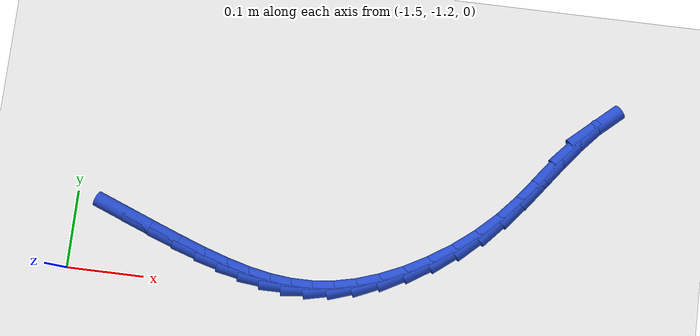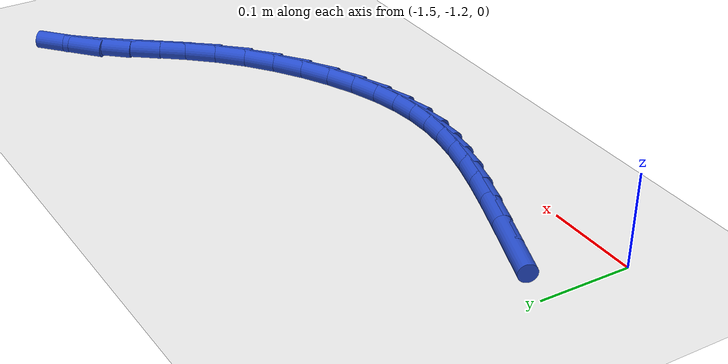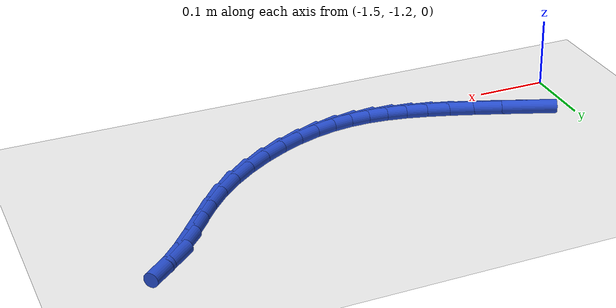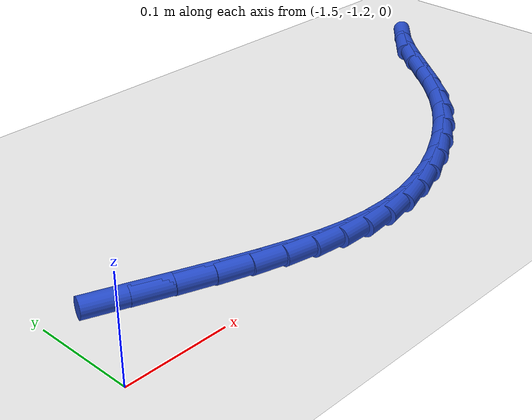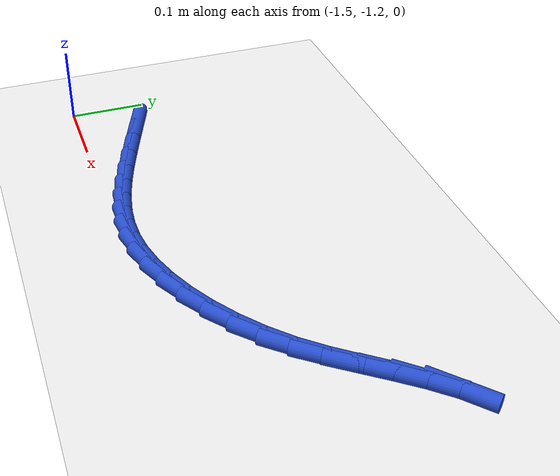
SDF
<sdf version="1.6">
 <world name="default">
  <model name="ground_plane">
   <static>1</static>
   <link name="link">
    <collision name="collision">
     <geometry><plane><normal>0 0 1</normal><size>100 100</size></plane></geometry>
     <surface><friction><ode><mu>100</mu><mu2>50</mu2></ode></friction></surface>
    </collision>
    <visual name="visual">
     <cast_shadows>0</cast_shadows>
     <geometry><plane><normal>0 0 1</normal><size>100 100</size></plane></geometry>
     <material>
      <script><uri>file://media/materials/scripts/gazebo.material</uri><name>Gazebo/WhiteGlow</name></script>
     </material>
    </visual>
   </link>
  </model>
  <model name="line">
   <link name="link_197">
    <pose>-1.4349456128349902 -1.121891515718077 0.01 0 1.57 -0.3691811002070075</pose>
    <collision name="collision">
     <geometry><cylinder><radius>0.01</radius><length>0.08</length></cylinder></geometry>
    </collision>
    <visual name="visual">
     <material>
      <script><name>Gazebo/Blue</name><uri>file://media/materials/scripts/gazebo.material</uri></script>
     </material>
     <geometry><cylinder><radius>0.01</radius><length>0.08</length></cylinder></geometry>
    </visual>
   </link>
   <link name="link_198">
    <pose>-1.3962301839045894 -1.1368713424145218 0.01 0 1.57 -0.3624238660496982</pose>
    <collision name="collision">
     <geometry><cylinder><radius>0.01</radius><length>0.08</length></cylinder></geometry>
    </collision>
    <visual name="visual">
     <material>
      <script><name>Gazebo/Blue</name><uri>file://media/materials/scripts/gazebo.material</uri></script>
     </material>
     <geometry><cylinder><radius>0.01</radius><length>0.08</length></cylinder></geometry>
    </visual>
   </link>
   <link name="link_199">
    <pose>-1.3605106121809285 -1.1504152274865116 0.01 0 1.57 -0.34339848059584477</pose>
    <collision name="collision">
     <geometry><cylinder><radius>0.01</radius><length>0.08</length></cylinder></geometry>
    </collision>
    <visual name="visual">
     <material>
      <script><name>Gazebo/Blue</name><uri>file://media/materials/scripts/gazebo.material</uri></script>
     </material>
     <geometry><cylinder><radius>0.01</radius><length>0.08</length></cylinder></geometry>
    </visual>
   </link>
   <link name="link_200">
    <pose>-1.3273190146688547 -1.162283388579344 0.01 0 1.57 -0.30942822844365053</pose>
    <collision name="collision">
     <geometry><cylinder><radius>0.01</radius><length>0.08</length></cylinder></geometry>
    </collision>
    <visual name="visual">
     <material>
      <script><name>Gazebo/Blue</name><uri>file://media/materials/scripts/gazebo.material</uri></script>
     </material>
     <geometry><cylinder><radius>0.01</radius><length>0.08</length></cylinder></geometry>
    </visual>
   </link>
   <link name="link_201">
    <pose>-1.2961875083732128 -1.1722360433383165 0.01 0 1.57 -0.2580791957704588</pose>
    <collision name="collision">
     <geometry><cylinder><radius>0.01</radius><length>0.08</length></cylinder></geometry>
    </collision>
    <visual name="visual">
     <material>
      <script><name>Gazebo/Blue</name><uri>file://media/materials/scripts/gazebo.material</uri></script>
     </material>
     <geometry><cylinder><radius>0.01</radius><length>0.08</length></cylinder></geometry>
    </visual>
   </link>
   <link name="link_202">
    <pose>-1.266648210298848 -1.1800334094087257 0.01 0 1.57 -0.187879134721966</pose>
    <collision name="collision">
     <geometry><cylinder><radius>0.01</radius><length>0.08</length></cylinder></geometry>
    </collision>
    <visual name="visual">
     <material>
      <script><name>Gazebo/Blue</name><uri>file://media/materials/scripts/gazebo.material</uri></script>
     </material>
     <geometry><cylinder><radius>0.01</radius><length>0.08</length></cylinder></geometry>
    </visual>
   </link>
   <link name="link_203">
    <pose>-1.2382332374506064 -1.1854357044358688 0.01 0 1.57 -0.0993686221769719</pose>
    <collision name="collision">
     <geometry><cylinder><radius>0.01</radius><length>0.08</length></cylinder></geometry>
    </collision>
    <visual name="visual">
     <material>
      <script><name>Gazebo/Blue</name><uri>file://media/materials/scripts/gazebo.material</uri></script>
     </material>
     <geometry><cylinder><radius>0.01</radius><length>0.08</length></cylinder></geometry>
    </visual>
   </link>
   <link name="link_204">
    <pose>-1.2104747068333324 -1.188203146065043 0.01 0 1.57 0.0038880556625734545</pose>
    <collision name="collision">
     <geometry><cylinder><radius>0.01</radius><length>0.08</length></cylinder></geometry>
    </collision>
    <visual name="visual">
     <material>
      <script><name>Gazebo/Blue</name><uri>file://media/materials/scripts/gazebo.material</uri></script>
     </material>
     <geometry><cylinder><radius>0.01</radius><length>0.08</length></cylinder></geometry>
    </visual>
   </link>
   <link name="link_205">
    <pose>-1.1829047354518725 -1.1880959519415455 0.01 0 1.57 0.11516830366851907</pose>
    <collision name="collision">
     <geometry><cylinder><radius>0.01</radius><length>0.08</length></cylinder></geometry>
    </collision>
    <visual name="visual">
     <material>
      <script><name>Gazebo/Blue</name><uri>file://media/materials/scripts/gazebo.material</uri></script>
     </material>
     <geometry><cylinder><radius>0.01</radius><length>0.08</length></cylinder></geometry>
    </visual>
   </link>
   <link name="link_206">
    <pose>-1.1550554403110715 -1.1848743397106734 0.01 0 1.57 0.22602246332758458</pose>
    <collision name="collision">
     <geometry><cylinder><radius>0.01</radius><length>0.08</length></cylinder></geometry>
    </collision>
    <visual name="visual">
     <material>
      <script><name>Gazebo/Blue</name><uri>file://media/materials/scripts/gazebo.material</uri></script>
     </material>
     <geometry><cylinder><radius>0.01</radius><length>0.08</length></cylinder></geometry>
    </visual>
   </link>
   <link name="link_207">
    <pose>-1.1264589384157757 -1.178298527017724 0.01 0 1.57 0.32833215169955077</pose>
    <collision name="collision">
     <geometry><cylinder><radius>0.01</radius><length>0.08</length></cylinder></geometry>
    </collision>
    <visual name="visual">
     <material>
      <script><name>Gazebo/Blue</name><uri>file://media/materials/scripts/gazebo.material</uri></script>
     </material>
     <geometry><cylinder><radius>0.01</radius><length>0.08</length></cylinder></geometry>
    </visual>
   </link>
   <link name="link_208">
    <pose>-1.0968071408383282 -1.1681972743706284 0.01 0 1.57 0.4189148351225758</pose>
    <collision name="collision">
     <geometry><cylinder><radius>0.01</radius><length>0.08</length></cylinder></geometry>
    </collision>
    <visual name="visual">
     <material>
      <script><name>Gazebo/Blue</name><uri>file://media/materials/scripts/gazebo.material</uri></script>
     </material>
     <geometry><cylinder><radius>0.01</radius><length>0.08</length></cylinder></geometry>
    </visual>
   </link>
   <link name="link_209">
    <pose>-1.066542126480907 -1.1547211229999572 0.01 0 1.57 0.5025192084536022</pose>
    <collision name="collision">
     <geometry><cylinder><radius>0.01</radius><length>0.08</length></cylinder></geometry>
    </collision>
    <visual name="visual">
     <material>
      <script><name>Gazebo/Blue</name><uri>file://media/materials/scripts/gazebo.material</uri></script>
     </material>
     <geometry><cylinder><radius>0.01</radius><length>0.08</length></cylinder></geometry>
    </visual>
   </link>
   <link name="link_210">
    <pose>-1.0363259196702082 -1.138114958621379 0.01 0 1.57 0.5837919582710669</pose>
    <collision name="collision">
     <geometry><cylinder><radius>0.01</radius><length>0.08</length></cylinder></geometry>
    </collision>
    <visual name="visual">
     <material>
      <script><name>Gazebo/Blue</name><uri>file://media/materials/scripts/gazebo.material</uri></script>
     </material>
     <geometry><cylinder><radius>0.01</radius><length>0.08</length></cylinder></geometry>
    </visual>
   </link>
   <link name="link_211">
    <pose>-1.0068205732241546 -1.11862367917173 0.01 0 1.57 0.6665720710698705</pose>
    <collision name="collision">
     <geometry><cylinder><radius>0.01</radius><length>0.08</length></cylinder></geometry>
    </collision>
    <visual name="visual">
     <material>
      <script><name>Gazebo/Blue</name><uri>file://media/materials/scripts/gazebo.material</uri></script>
     </material>
     <geometry><cylinder><radius>0.01</radius><length>0.08</length></cylinder></geometry>
    </visual>
   </link>
   <link name="link_212">
    <pose>-0.9786881399606696 -1.096492182587847 0.01 0 1.57 0.7543824588172512</pose>
    <collision name="collision">
     <geometry><cylinder><radius>0.01</radius><length>0.08</length></cylinder></geometry>
    </collision>
    <visual name="visual">
     <material>
      <script><name>Gazebo/Blue</name><uri>file://media/materials/scripts/gazebo.material</uri></script>
     </material>
     <geometry><cylinder><radius>0.01</radius><length>0.08</length></cylinder></geometry>
    </visual>
   </link>
   <link name="link_213">
    <pose>-0.9525906726976752 -1.071965366806567 0.01 0 1.57 0.8450889975116547</pose>
    <collision name="collision">
     <geometry><cylinder><radius>0.01</radius><length>0.08</length></cylinder></geometry>
    </collision>
    <visual name="visual">
     <material>
      <script><name>Gazebo/Blue</name><uri>file://media/materials/scripts/gazebo.material</uri></script>
     </material>
     <geometry><cylinder><radius>0.01</radius><length>0.08</length></cylinder></geometry>
    </visual>
   </link>
   <link name="link_214">
    <pose>-0.929006146609986 -1.0453827612234978 0.01 0 1.57 0.9076860397818591</pose>
    <collision name="collision">
     <geometry><cylinder><radius>0.01</radius><length>0.08</length></cylinder></geometry>
    </collision>
    <visual name="visual">
     <material>
      <script><name>Gazebo/Blue</name><uri>file://media/materials/scripts/gazebo.material</uri></script>
     </material>
     <geometry><cylinder><radius>0.01</radius><length>0.08</length></cylinder></geometry>
    </visual>
   </link>
   <link name="link_215">
    <pose>-0.9073346923234765 -1.0176379983848027 0.01 0 1.57 0.9298264614946578</pose>
    <collision name="collision">
     <geometry><cylinder><radius>0.01</radius><length>0.08</length></cylinder></geometry>
    </collision>
    <visual name="visual">
     <material>
      <script><name>Gazebo/Blue</name><uri>file://media/materials/scripts/gazebo.material</uri></script>
     </material>
     <geometry><cylinder><radius>0.01</radius><length>0.08</length></cylinder></geometry>
    </visual>
   </link>
   <link name="link_216">
    <pose>-0.8865853195661703 -0.9898257800186167 0.01 0 1.57 0.9100720538524378</pose>
    <collision name="collision">
     <geometry><cylinder><radius>0.01</radius><length>0.08</length></cylinder></geometry>
    </collision>
    <visual name="visual">
     <material>
      <script><name>Gazebo/Blue</name><uri>file://media/materials/scripts/gazebo.material</uri></script>
     </material>
     <geometry><cylinder><radius>0.01</radius><length>0.08</length></cylinder></geometry>
    </visual>
   </link>
   <link name="link_217">
    <pose>-0.8657664884314528 -0.9630410904117097 0.01 0 1.57 0.845108518349826</pose>
    <collision name="collision">
     <geometry><cylinder><radius>0.01</radius><length>0.08</length></cylinder></geometry>
    </collision>
    <visual name="visual">
     <material>
      <script><name>Gazebo/Blue</name><uri>file://media/materials/scripts/gazebo.material</uri></script>
     </material>
     <geometry><cylinder><radius>0.01</radius><length>0.08</length></cylinder></geometry>
    </visual>
   </link>
   <link name="link_218">
    <pose>-0.84388665901271 -0.9383789138508525 0.01 0 1.57 0.730645129385216</pose>
    <collision name="collision">
     <geometry><cylinder><radius>0.01</radius><length>0.08</length></cylinder></geometry>
    </collision>
    <visual name="visual">
     <material>
      <script><name>Gazebo/Blue</name><uri>file://media/materials/scripts/gazebo.material</uri></script>
     </material>
     <geometry><cylinder><radius>0.01</radius><length>0.08</length></cylinder></geometry>
    </visual>
   </link>
  </model>
 </world>
</sdf>
